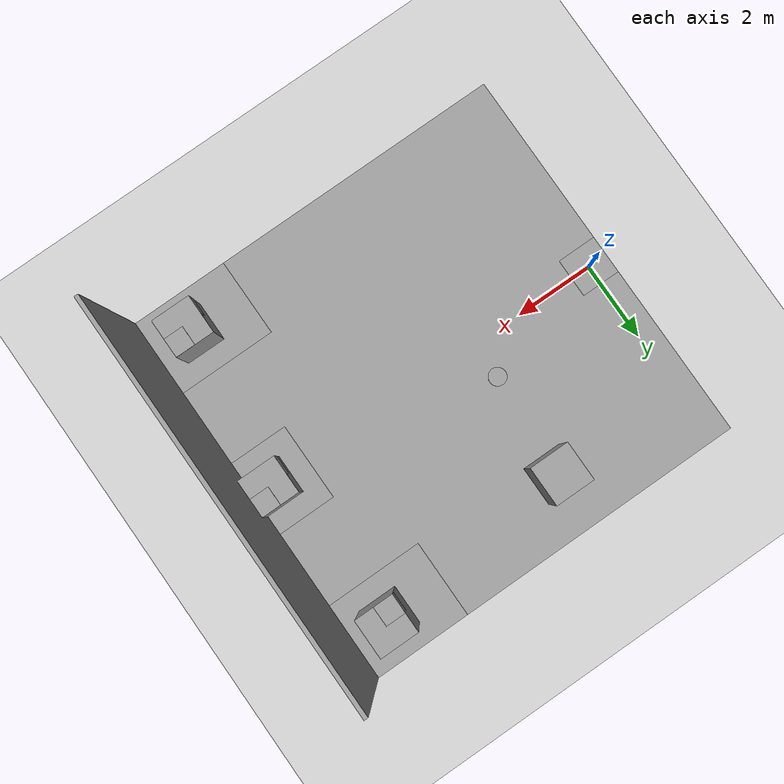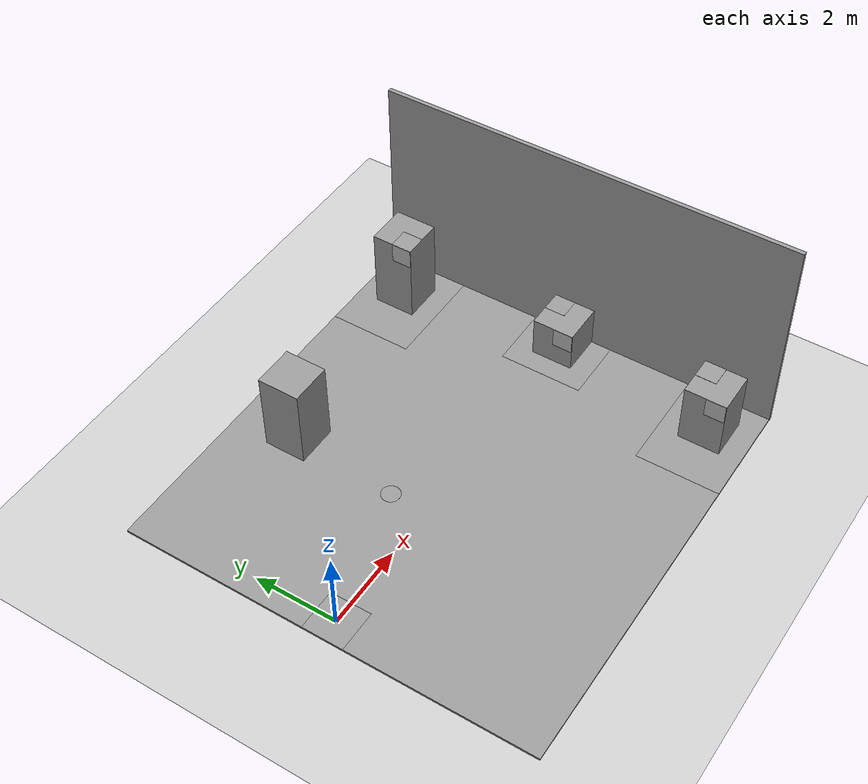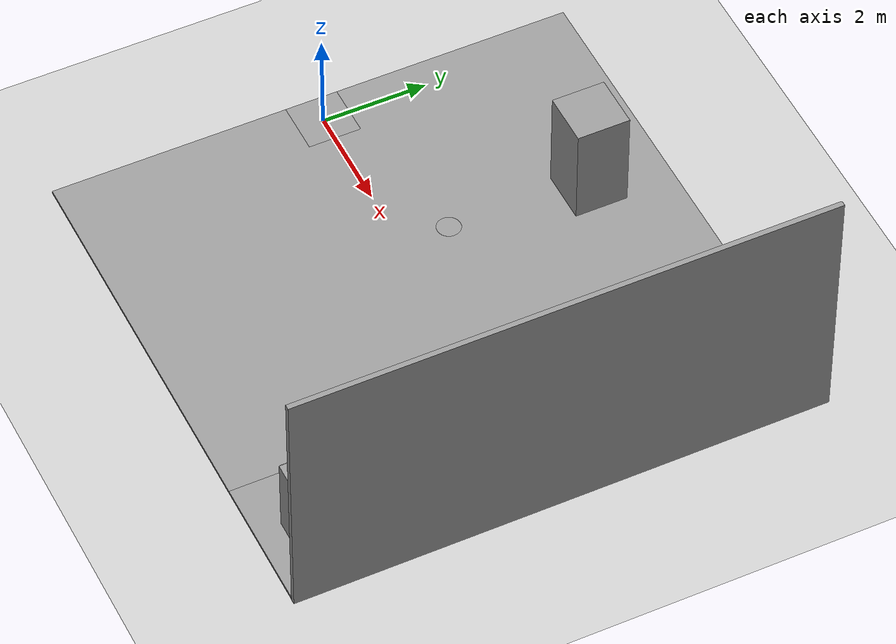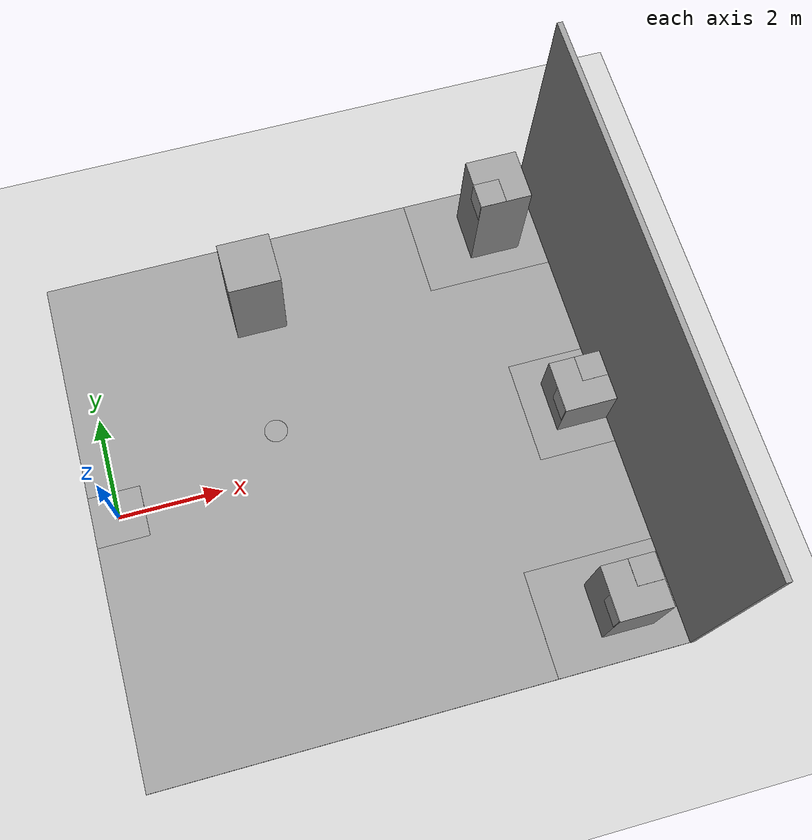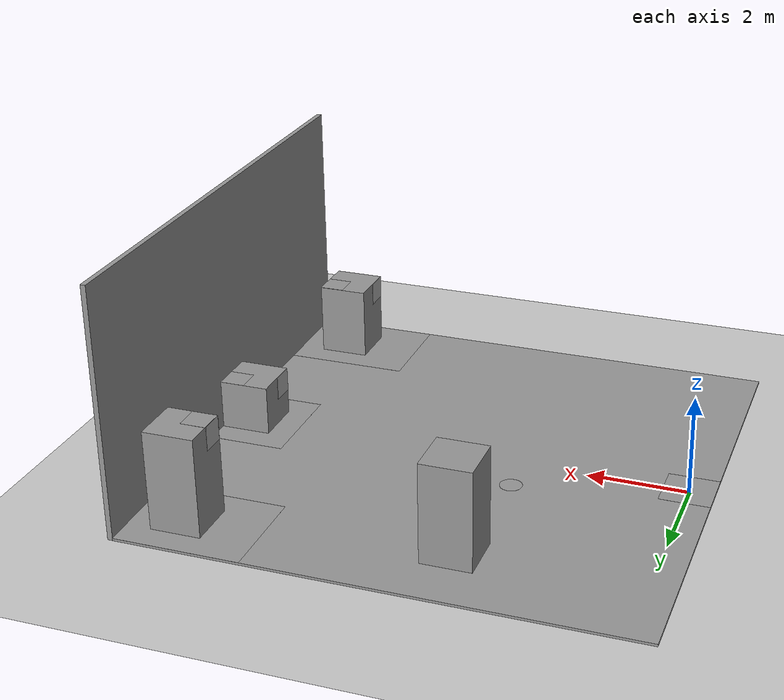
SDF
<sdf version="1.7">
 <world name="default">
  <light name="sun" type="directional">
   <pose>0 0 10 0 -0 0</pose>
   <diffuse>0.8 0.8 0.8 1</diffuse>
   <specular>0.2 0.2 0.2 1</specular>
   <attenuation>
    <range>1000</range>
    <constant>0.9</constant>
    <linear>0.01</linear>
    <quadratic>0.001</quadratic>
   </attenuation>
   <direction>-0.5 0.1 -0.9</direction>
   <spot><inner_angle>0</inner_angle><outer_angle>0</outer_angle><falloff>0</falloff></spot>
  </light>
  <model name="ground_plane">
   <static>1</static>
   <link name="link">
    <collision name="collision">
     <geometry><plane><normal>0 0 1</normal><size>100 100</size></plane></geometry>
     <surface>
      <contact><collide_bitmask>65535</collide_bitmask></contact>
      <friction><ode><mu>100</mu><mu2>50</mu2></ode></friction>
     </surface>
    </collision>
    <visual name="visual">
     <cast_shadows>0</cast_shadows>
     <geometry><plane><normal>0 0 1</normal><size>100 100</size></plane></geometry>
     <material>
      <script><uri>file://media/materials/scripts/gazebo.material</uri><name>Gazebo/Grey</name></script>
     </material>
    </visual>
   </link>
  </model>
  <physics type="ode">
   <ode>
    <solver>
     <type>quick</type>
     <iters>100</iters>
     <sor>1</sor>
     <use_dynamic_moi_rescaling>0</use_dynamic_moi_rescaling>
    </solver>
    <constraints>
     <cfm>0</cfm>
     <erp>0.9</erp>
     <contact_max_correcting_vel>0.1</contact_max_correcting_vel>
     <contact_surface_layer>0</contact_surface_layer>
    </constraints>
   </ode>
   <real_time_update_rate>-1</real_time_update_rate>
   <max_step_size>0.001</max_step_size>
   <real_time_factor>1</real_time_factor>
  </physics>
  <scene><ambient>0.4 0.4 0.4 1</ambient><background>0.7 0.7 0.7 1</background><shadows>1</shadows></scene>
  <spherical_coordinates>
   <surface_model>EARTH_WGS84</surface_model>
   <latitude_deg>0</latitude_deg>
   <longitude_deg>0</longitude_deg>
   <elevation>0</elevation>
   <heading_deg>0</heading_deg>
  </spherical_coordinates>
  <model name="background">
   <link name="link">
    <inertial>
     <mass>96500</mass>
     <inertia>
      <ixx>201122</ixx>
      <ixy>0</ixy>
      <ixz>0</ixz>
      <iyy>1.00521e+06</iyy>
      <iyz>0</iyz>
      <izz>804247</izz>
     </inertia>
    </inertial>
    <visual name="visual">
     <geometry><box><size>10 0.1 5</size></box></geometry>
     <material>
      <script><name>Gazebo/Grey</name><uri>file://media/materials/scripts/gazebo.material</uri></script>
      <shader type="pixel"><normal_map>__default__</normal_map></shader>
      <emissive>0.004 0.376 0 1</emissive>
      <ambient>0.3 0.3 0.3 1</ambient>
      <diffuse>0.7 0.7 0.7 1</diffuse>
      <specular>0.01 0.01 0.01 1</specular>
     </material>
    </visual>
    <collision name="collision">
     <geometry><box><size>10 0.1 5</size></box></geometry>
     <surface>
      <friction>
       <ode><mu>1</mu><mu2>1</mu2><fdir1>0 0 0</fdir1><slip1>0</slip1><slip2>0</slip2></ode>
       <torsional>
        <coefficient>1</coefficient>
        <patch_radius>0</patch_radius>
        <surface_radius>0</surface_radius>
        <use_patch_radius>1</use_patch_radius>
        <ode><slip>0</slip></ode>
       </torsional>
      </friction>
      <bounce><restitution_coefficient>0</restitution_coefficient><threshold>1e+06</threshold></bounce>
      <contact>
       <collide_without_contact>0</collide_without_contact>
       <collide_without_contact_bitmask>1</collide_without_contact_bitmask>
       <collide_bitmask>1</collide_bitmask>
       <ode>
        <soft_cfm>0</soft_cfm>
        <soft_erp>0.2</soft_erp>
        <kp>1e+13</kp>
        <kd>1</kd>
        <max_vel>0.01</max_vel>
        <min_depth>0</min_depth>
       </ode>
       <bullet>
        <split_impulse>1</split_impulse>
        <split_impulse_penetration_threshold>-0.01</split_impulse_penetration_threshold>
        <soft_cfm>0</soft_cfm>
        <soft_erp>0.2</soft_erp>
        <kp>1e+13</kp>
        <kd>1</kd>
       </bullet>
      </contact>
     </surface>
    </collision>
   </link>
   <static>1</static>
   <pose>9.55 0 2.5 0 0 -1.57</pose>
  </model>
  <model name="Gedung_B">
   <link name="link">
    <inertial>
     <mass>1</mass>
     <inertia>
      <ixx>0.166667</ixx>
      <ixy>0</ixy>
      <ixz>0</ixz>
      <iyy>0.166667</iyy>
      <iyz>0</iyz>
      <izz>0.166667</izz>
     </inertia>
    </inertial>
    <visual name="ModelPreview_89::link::visual_2">
     <geometry><box><size>0.5 0.5 0.001</size></box></geometry>
     <material>
      <script><name>Gazebo/Grey</name><uri>file://media/materials/scripts/gazebo.material</uri></script>
      <shader type="pixel"><normal_map>__default__</normal_map></shader>
      <emissive>0.502 0 0 1</emissive>
      <ambient>0.3 0.3 0.3 1</ambient>
      <diffuse>0.7 0.7 0.7 1</diffuse>
      <specular>0.01 0.01 0.01 1</specular>
     </material>
     <pose>-0.25 0.25 0.5 0 -0 0</pose>
    </visual>
    <visual name="visual">
     <geometry><box><size>1 1 1</size></box></geometry>
     <material>
      <script><name>Gazebo/Grey</name><uri>file://media/materials/scripts/gazebo.material</uri></script>
      <shader type="pixel"><normal_map>__default__</normal_map></shader>
      <emissive>0.004 0.376 0 1</emissive>
      <ambient>0.3 0.3 0.3 1</ambient>
      <diffuse>0.7 0.7 0.7 1</diffuse>
      <specular>0.01 0.01 0.01 1</specular>
     </material>
    </visual>
    <collision name="collision">
     <geometry><box><size>1 1 1</size></box></geometry>
     <surface>
      <friction>
       <ode><mu>1</mu><mu2>1</mu2><fdir1>0 0 0</fdir1><slip1>0</slip1><slip2>0</slip2></ode>
       <torsional>
        <coefficient>1</coefficient>
        <patch_radius>0</patch_radius>
        <surface_radius>0</surface_radius>
        <use_patch_radius>1</use_patch_radius>
        <ode><slip>0</slip></ode>
       </torsional>
      </friction>
      <bounce><restitution_coefficient>0</restitution_coefficient><threshold>1e+06</threshold></bounce>
      <contact>
       <collide_without_contact>0</collide_without_contact>
       <collide_without_contact_bitmask>1</collide_without_contact_bitmask>
       <collide_bitmask>1</collide_bitmask>
       <ode>
        <soft_cfm>0</soft_cfm>
        <soft_erp>0.2</soft_erp>
        <kp>1e+13</kp>
        <kd>1</kd>
        <max_vel>0.01</max_vel>
        <min_depth>0</min_depth>
       </ode>
       <bullet>
        <split_impulse>1</split_impulse>
        <split_impulse_penetration_threshold>-0.01</split_impulse_penetration_threshold>
        <soft_cfm>0</soft_cfm>
        <soft_erp>0.2</soft_erp>
        <kp>1e+13</kp>
        <kd>1</kd>
       </bullet>
      </contact>
     </surface>
    </collision>
   </link>
   <static>1</static>
   <pose>9 0 0.549999 0 0 -1.57</pose>
  </model>
  <model name="Obstacle">
   <link name="link">
    <inertial>
     <mass>1</mass>
     <inertia>
      <ixx>0.166667</ixx>
      <ixy>0</ixy>
      <ixz>0</ixz>
      <iyy>0.166667</iyy>
      <iyz>0</iyz>
      <izz>0.166667</izz>
     </inertia>
    </inertial>
    <visual name="visual">
     <geometry><box><size>1 1 2</size></box></geometry>
     <material>
      <script><name>Gazebo/Grey</name><uri>file://media/materials/scripts/gazebo.material</uri></script>
      <shader type="pixel"><normal_map>__default__</normal_map></shader>
      <emissive>0.004 0 0.376 1</emissive>
      <ambient>0.3 0.3 0.3 1</ambient>
      <diffuse>0.7 0.7 0.7 1</diffuse>
      <specular>0.01 0.01 0.01 1</specular>
     </material>
    </visual>
    <collision name="collision">
     <geometry><box><size>1 1 2</size></box></geometry>
     <surface>
      <friction>
       <ode><mu>1</mu><mu2>1</mu2><fdir1>0 0 0</fdir1><slip1>0</slip1><slip2>0</slip2></ode>
       <torsional>
        <coefficient>1</coefficient>
        <patch_radius>0</patch_radius>
        <surface_radius>0</surface_radius>
        <use_patch_radius>1</use_patch_radius>
        <ode><slip>0</slip></ode>
       </torsional>
      </friction>
      <bounce><restitution_coefficient>0</restitution_coefficient><threshold>1e+06</threshold></bounce>
      <contact>
       <collide_without_contact>0</collide_without_contact>
       <collide_without_contact_bitmask>1</collide_without_contact_bitmask>
       <collide_bitmask>1</collide_bitmask>
       <ode>
        <soft_cfm>0</soft_cfm>
        <soft_erp>0.2</soft_erp>
        <kp>1e+13</kp>
        <kd>1</kd>
        <max_vel>0.01</max_vel>
        <min_depth>0</min_depth>
       </ode>
       <bullet>
        <split_impulse>1</split_impulse>
        <split_impulse_penetration_threshold>-0.01</split_impulse_penetration_threshold>
        <soft_cfm>0</soft_cfm>
        <soft_erp>0.2</soft_erp>
        <kp>1e+13</kp>
        <kd>1</kd>
       </bullet>
      </contact>
     </surface>
    </collision>
   </link>
   <static>1</static>
   <pose>3.5 3.5 1.05 0 0 -1.57</pose>
  </model>
  <model name="Gedung_A">
   <link name="link">
    <inertial>
     <mass>1</mass>
     <inertia>
      <ixx>0.166667</ixx>
      <ixy>0</ixy>
      <ixz>0</ixz>
      <iyy>0.166667</iyy>
      <iyz>0</iyz>
      <izz>0.166667</izz>
     </inertia>
    </inertial>
    <visual name="ModelPreview_89::link::visual_2">
     <geometry><box><size>0.5 0.5 0.001</size></box></geometry>
     <material>
      <script><name>Gazebo/Grey</name><uri>file://media/materials/scripts/gazebo.material</uri></script>
      <shader type="pixel"><normal_map>__default__</normal_map></shader>
      <emissive>0.502 0 0 1</emissive>
      <ambient>0.3 0.3 0.3 1</ambient>
      <diffuse>0.7 0.7 0.7 1</diffuse>
      <specular>0.01 0.01 0.01 1</specular>
     </material>
     <pose>0.25 -0.25 1 0 -0 0</pose>
    </visual>
    <visual name="visual">
     <geometry><box><size>1 1 2</size></box></geometry>
     <material>
      <script><name>Gazebo/Grey</name><uri>file://media/materials/scripts/gazebo.material</uri></script>
      <shader type="pixel"><normal_map>__default__</normal_map></shader>
      <emissive>0.004 0.376 0 1</emissive>
      <ambient>0.3 0.3 0.3 1</ambient>
      <diffuse>0.7 0.7 0.7 1</diffuse>
      <specular>0.01 0.01 0.01 1</specular>
     </material>
    </visual>
    <collision name="collision">
     <geometry><box><size>1 1 2</size></box></geometry>
     <surface>
      <friction>
       <ode><mu>1</mu><mu2>1</mu2><fdir1>0 0 0</fdir1><slip1>0</slip1><slip2>0</slip2></ode>
       <torsional>
        <coefficient>1</coefficient>
        <patch_radius>0</patch_radius>
        <surface_radius>0</surface_radius>
        <use_patch_radius>1</use_patch_radius>
        <ode><slip>0</slip></ode>
       </torsional>
      </friction>
      <bounce><restitution_coefficient>0</restitution_coefficient><threshold>1e+06</threshold></bounce>
      <contact>
       <collide_without_contact>0</collide_without_contact>
       <collide_without_contact_bitmask>1</collide_without_contact_bitmask>
       <collide_bitmask>1</collide_bitmask>
       <ode>
        <soft_cfm>0</soft_cfm>
        <soft_erp>0.2</soft_erp>
        <kp>1e+13</kp>
        <kd>1</kd>
        <max_vel>0.01</max_vel>
        <min_depth>0</min_depth>
       </ode>
       <bullet>
        <split_impulse>1</split_impulse>
        <split_impulse_penetration_threshold>-0.01</split_impulse_penetration_threshold>
        <soft_cfm>0</soft_cfm>
        <soft_erp>0.2</soft_erp>
        <kp>1e+13</kp>
        <kd>1</kd>
       </bullet>
      </contact>
     </surface>
    </collision>
   </link>
   <static>1</static>
   <pose>8.5 4 1.05 0 0 -1.57</pose>
  </model>
  <model name="Gedung_C">
   <link name="link">
    <inertial>
     <mass>1</mass>
     <inertia>
      <ixx>0.166667</ixx>
      <ixy>0</ixy>
      <ixz>0</ixz>
      <iyy>0.166667</iyy>
      <iyz>0</iyz>
      <izz>0.166667</izz>
     </inertia>
    </inertial>
    <pose>-0 -0 0.506245 0 -0 0</pose>
    <visual name="visual">
     <geometry><box><size>1 1 1.5</size></box></geometry>
     <material>
      <script><name>Gazebo/Grey</name><uri>file://media/materials/scripts/gazebo.material</uri></script>
      <shader type="pixel"><normal_map>__default__</normal_map></shader>
      <ambient>0.3 0.3 0.3 1</ambient>
      <diffuse>0.7 0.7 0.7 1</diffuse>
      <specular>0.01 0.01 0.01 1</specular>
      <emissive>0.004 0.376 0 1</emissive>
     </material>
    </visual>
    <visual name="ModelPreview_110::link::visual_1">
     <geometry><box><size>0.5 0.5 0.01</size></box></geometry>
     <material>
      <script><name>Gazebo/Grey</name><uri>file://media/materials/scripts/gazebo.material</uri></script>
      <shader type="pixel"><normal_map>__default__</normal_map></shader>
      <ambient>0.3 0.3 0.3 1</ambient>
      <diffuse>0.7 0.7 0.7 1</diffuse>
      <specular>0.01 0.01 0.01 1</specular>
      <emissive>0.502 0 0 1</emissive>
     </material>
     <pose>0.25 -0.25 0.75 0 -0 0</pose>
    </visual>
    <collision name="collision">
     <geometry><box><size>1 1 1.5</size></box></geometry>
     <surface>
      <friction>
       <ode><mu>1</mu><mu2>1</mu2><fdir1>0 0 0</fdir1><slip1>0</slip1><slip2>0</slip2></ode>
       <torsional>
        <coefficient>1</coefficient>
        <patch_radius>0</patch_radius>
        <surface_radius>0</surface_radius>
        <use_patch_radius>1</use_patch_radius>
        <ode><slip>0</slip></ode>
       </torsional>
      </friction>
      <bounce><restitution_coefficient>0</restitution_coefficient><threshold>1e+06</threshold></bounce>
      <contact>
       <collide_without_contact>0</collide_without_contact>
       <collide_without_contact_bitmask>1</collide_without_contact_bitmask>
       <collide_bitmask>1</collide_bitmask>
       <ode>
        <soft_cfm>0</soft_cfm>
        <soft_erp>0.2</soft_erp>
        <kp>1e+13</kp>
        <kd>1</kd>
        <max_vel>0.01</max_vel>
        <min_depth>0</min_depth>
       </ode>
       <bullet>
        <split_impulse>1</split_impulse>
        <split_impulse_penetration_threshold>-0.01</split_impulse_penetration_threshold>
        <soft_cfm>0</soft_cfm>
        <soft_erp>0.2</soft_erp>
        <kp>1e+13</kp>
        <kd>1</kd>
       </bullet>
      </contact>
     </surface>
    </collision>
   </link>
   <static>1</static>
   <pose>8.5 -4 0.293752 0 -0 1.57</pose>
  </model>
  <model name="VTOL1">
   <link name="link">
    <visual name="visual">
     <geometry><mesh><uri>model://vtol1/meshes/VTOL1.dae</uri><scale>0.96 0.96 0.96</scale></mesh></geometry>
     <material><shader type="pixel"/></material>
    </visual>
   </link>
   <static>1</static>
   <pose>8 3.75 1.56607 0 0 -3.14</pose>
  </model>
  <model name="VTOL2">
   <static>1</static>
   <link name="link">
    <visual name="visual">
     <geometry><mesh><uri>model://vtol2/meshes/VTOL2.dae</uri><scale>0.96 0.96 0.96</scale></mesh></geometry>
    </visual>
   </link>
   <pose>8.495 -0.25 0.570078 0 0 -3.14</pose>
  </model>
  <model name="VTOL3">
   <static>1</static>
   <link name="link">
    <visual name="visual">
     <geometry><mesh><uri>model://vtol3/meshes/VTOL3.dae</uri><scale>0.96 0.96 0.96</scale></mesh></geometry>
    </visual>
   </link>
   <pose>7.995 -4.25 1.07086 0 0 -3.14</pose>
  </model>
  <model name="carpet_1">
   <link name="link">
    <inertial>
     <mass>270000</mass>
     <inertia>
      <ixx>2.2725e+06</ixx>
      <ixy>0</ixy>
      <ixz>0</ixz>
      <iyy>2.2725e+06</iyy>
      <iyz>0</iyz>
      <izz>4.5e+06</izz>
     </inertia>
    </inertial>
    <pose>0.930575 4.13216 0 0 -0 0</pose>
    <visual name="visual">
     <geometry><box><size>10 10 0.05</size></box></geometry>
     <material>
      <script><name>Gazebo/Grey</name><uri>file://media/materials/scripts/gazebo.material</uri></script>
      <shader type="pixel"><normal_map>__default__</normal_map></shader>
      <emissive>0.333 0.341 0.325 1</emissive>
      <ambient>0.3 0.3 0.3 1</ambient>
      <diffuse>0.7 0.7 0.7 1</diffuse>
      <specular>0.01 0.01 0.01 1</specular>
     </material>
    </visual>
    <visual name="ModelPreview_1::link::visual_1">
     <geometry><box><size>1 1 0.0001</size></box></geometry>
     <material>
      <script><name>Gazebo/Grey</name><uri>file://media/materials/scripts/gazebo.material</uri></script>
      <shader type="pixel"><normal_map>__default__</normal_map></shader>
      <emissive>0.769 0.627 0 1</emissive>
      <ambient>0.3 0.3 0.3 1</ambient>
      <diffuse>0.7 0.7 0.7 1</diffuse>
      <specular>0.01 0.01 0.01 1</specular>
     </material>
     <pose>0 -4.5 0.0255 0 -0 0</pose>
    </visual>
    <visual name="ModelPreview_1::link::visual_2">
     <geometry><box><size>2 2.5 0.0001</size></box></geometry>
     <material>
      <script><name>Gazebo/Grey</name><uri>file://media/materials/scripts/gazebo.material</uri></script>
      <shader type="pixel"><normal_map>__default__</normal_map></shader>
      <emissive>0.004 0.376 0 1</emissive>
      <ambient>0.3 0.3 0.3 1</ambient>
      <diffuse>0.7 0.7 0.7 1</diffuse>
      <specular>0.01 0.01 0.01 1</specular>
     </material>
     <pose>-4 3.75 0.0255 0 -0 0</pose>
    </visual>
    <visual name="ModelPreview_1::link::visual_3">
     <geometry><box><size>2 1.5 0.0001</size></box></geometry>
     <material>
      <script><name>Gazebo/Grey</name><uri>file://media/materials/scripts/gazebo.material</uri></script>
      <shader type="pixel"><normal_map>__default__</normal_map></shader>
      <emissive>0.004 0.376 0 1</emissive>
      <ambient>0.3 0.3 0.3 1</ambient>
      <diffuse>0.7 0.7 0.7 1</diffuse>
      <specular>0.01 0.01 0.01 1</specular>
     </material>
     <pose>0 4.25 0.0255 0 -0 0</pose>
    </visual>
    <visual name="ModelPreview_1::link::visual_4">
     <geometry><box><size>2 2.5 0.0001</size></box></geometry>
     <material>
      <script><name>Gazebo/Grey</name><uri>file://media/materials/scripts/gazebo.material</uri></script>
      <shader type="pixel"><normal_map>__default__</normal_map></shader>
      <emissive>0.004 0.376 0 1</emissive>
      <ambient>0.3 0.3 0.3 1</ambient>
      <diffuse>0.7 0.7 0.7 1</diffuse>
      <specular>0.01 0.01 0.01 1</specular>
     </material>
     <pose>4 3.75 0.0255 0 -0 0</pose>
    </visual>
    <collision name="collision">
     <geometry><box><size>10 10 0.05</size></box></geometry>
     <surface>
      <friction>
       <ode><mu>1</mu><mu2>1</mu2><fdir1>0 0 0</fdir1><slip1>0</slip1><slip2>0</slip2></ode>
       <torsional>
        <coefficient>1</coefficient>
        <patch_radius>0</patch_radius>
        <surface_radius>0</surface_radius>
        <use_patch_radius>1</use_patch_radius>
        <ode><slip>0</slip></ode>
       </torsional>
      </friction>
      <bounce><restitution_coefficient>0</restitution_coefficient><threshold>1e+06</threshold></bounce>
      <contact>
       <collide_without_contact>0</collide_without_contact>
       <collide_without_contact_bitmask>1</collide_without_contact_bitmask>
       <collide_bitmask>1</collide_bitmask>
       <ode>
        <soft_cfm>0</soft_cfm>
        <soft_erp>0.2</soft_erp>
        <kp>1e+13</kp>
        <kd>1</kd>
        <max_vel>0.0001</max_vel>
        <min_depth>0</min_depth>
       </ode>
       <bullet>
        <split_impulse>1</split_impulse>
        <split_impulse_penetration_threshold>-0.01</split_impulse_penetration_threshold>
        <soft_cfm>0</soft_cfm>
        <soft_erp>0.2</soft_erp>
        <kp>1e+13</kp>
        <kd>1</kd>
       </bullet>
      </contact>
     </surface>
    </collision>
   </link>
   <static>1</static>
   <pose>0.3671 0.927284 0.024999 0 0 -1.57</pose>
  </model>
  <model name="ELP">
   <link name="link">
    <inertial>
     <mass>1</mass>
     <inertia><ixx>0.145833</ixx><ixy>0</ixy><ixz>0</ixz><iyy>0.145833</iyy><iyz>0</iyz><izz>0.125</izz></inertia>
     <pose>0 0 -0.03 0 -0 0</pose>
    </inertial>
    <visual name="visual">
     <geometry><cylinder><radius>0.225</radius><length>0.001</length></cylinder></geometry>
     <material>
      <script><name>Gazebo/Grey</name><uri>file://media/materials/scripts/gazebo.material</uri></script>
      <shader type="pixel"><normal_map>__default__</normal_map></shader>
      <ambient>0.3 0.3 0.3 1</ambient>
      <diffuse>0.7 0.7 0.7 1</diffuse>
      <specular>0.01 0.01 0.01 1</specular>
      <emissive>0.769 0.624 0 1</emissive>
     </material>
    </visual>
    <collision name="collision">
     <geometry><cylinder><radius>0.225</radius><length>0.0001</length></cylinder></geometry>
     <surface>
      <friction>
       <ode><mu>1</mu><mu2>1</mu2><fdir1>0 0 0</fdir1><slip1>0</slip1><slip2>0</slip2></ode>
       <torsional>
        <coefficient>1</coefficient>
        <patch_radius>0</patch_radius>
        <surface_radius>0</surface_radius>
        <use_patch_radius>1</use_patch_radius>
        <ode><slip>0</slip></ode>
       </torsional>
      </friction>
      <bounce><restitution_coefficient>0</restitution_coefficient><threshold>1e+06</threshold></bounce>
      <contact>
       <collide_without_contact>0</collide_without_contact>
       <collide_without_contact_bitmask>1</collide_without_contact_bitmask>
       <collide_bitmask>1</collide_bitmask>
       <ode>
        <soft_cfm>0</soft_cfm>
        <soft_erp>0.2</soft_erp>
        <kp>1e+13</kp>
        <kd>1</kd>
        <max_vel>0.01</max_vel>
        <min_depth>0</min_depth>
       </ode>
       <bullet>
        <split_impulse>1</split_impulse>
        <split_impulse_penetration_threshold>-0.01</split_impulse_penetration_threshold>
        <soft_cfm>0</soft_cfm>
        <soft_erp>0.2</soft_erp>
        <kp>1e+13</kp>
        <kd>1</kd>
       </bullet>
      </contact>
     </surface>
    </collision>
   </link>
   <static>1</static>
   <pose>3.25963 0.895157 0.050053 2e-06 9e-06 -1.4e-05</pose>
  </model>
  <gravity>0 0 -9.8</gravity>
  <magnetic_field>6e-06 2.3e-05 -4.2e-05</magnetic_field>
  <atmosphere type="adiabatic"/>
 </world>
</sdf>
